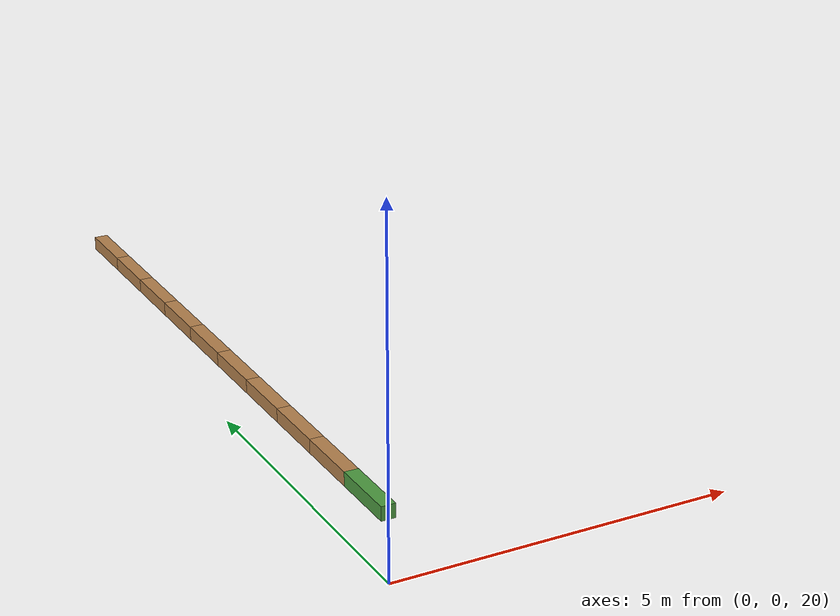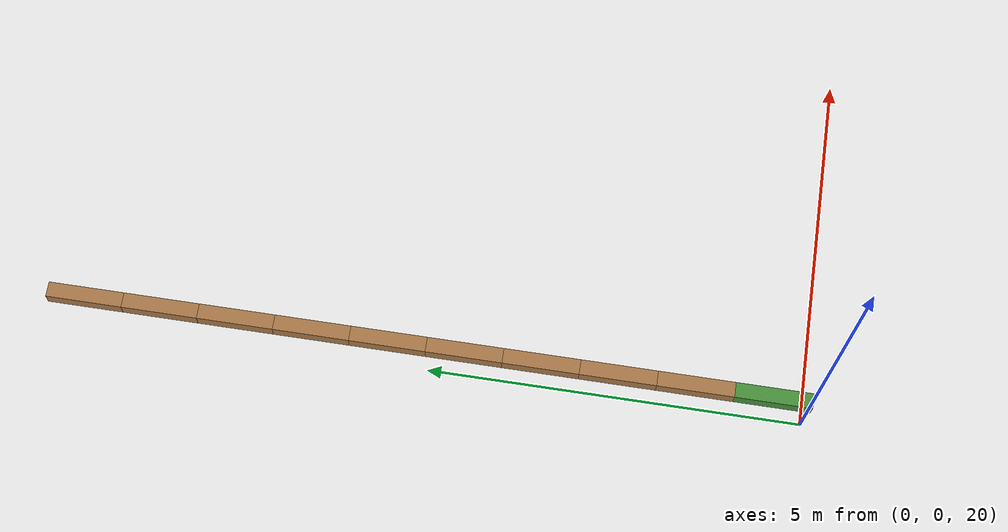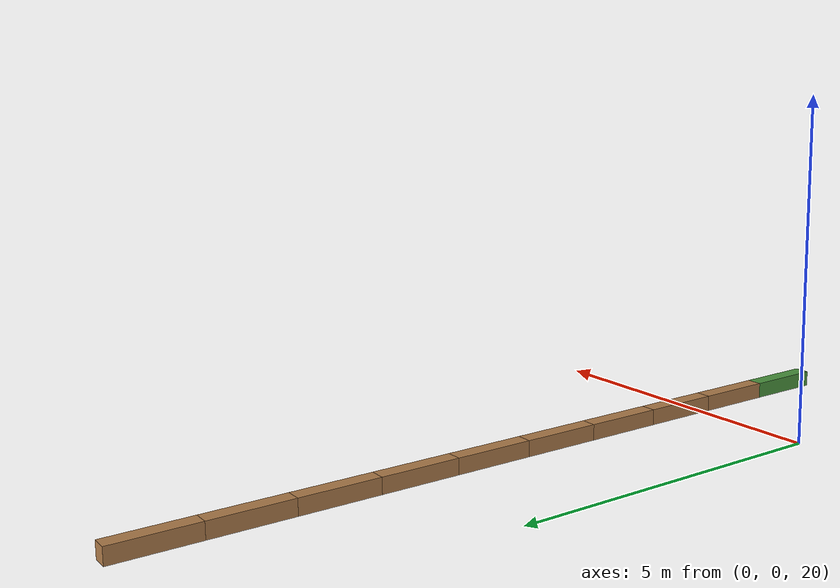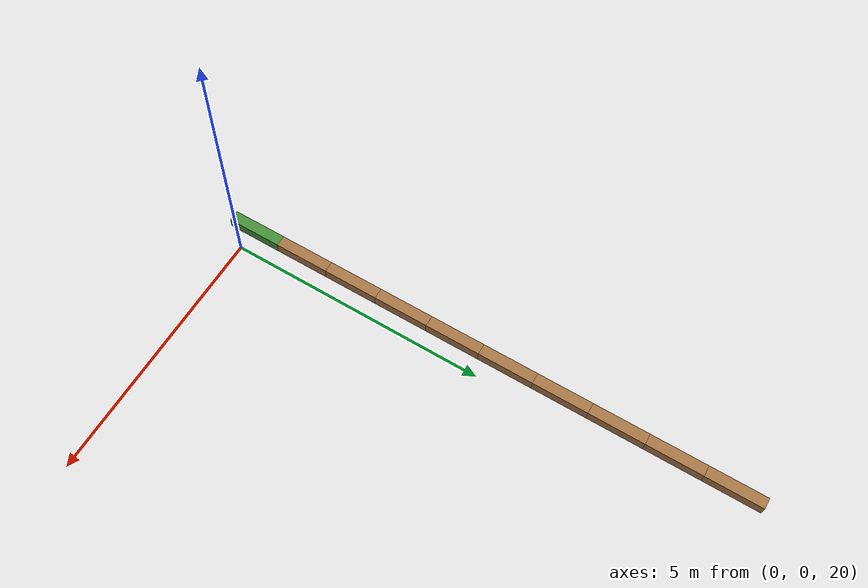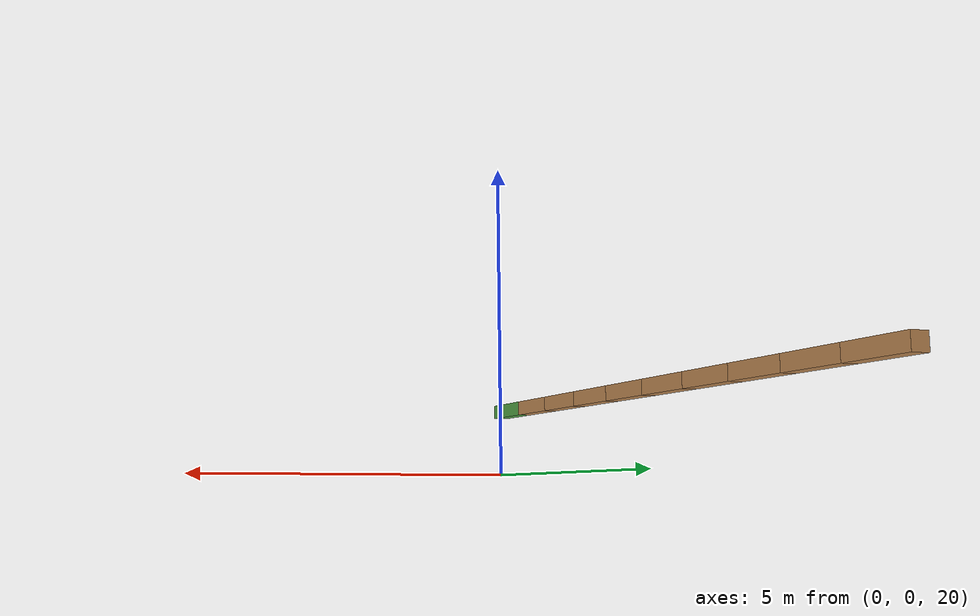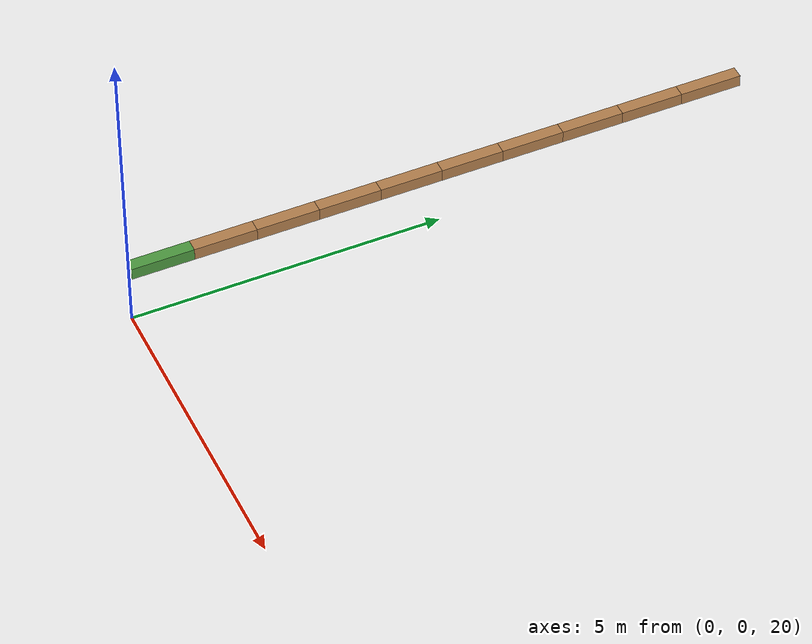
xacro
<?xml version="1.0"?>
<robot name="continuous_pendulum"
       xmlns:xi="http://www.w3.org/2001/XInclude"
       xmlns:gazebo="http://playerstage.sourceforge.net/gazebo/xmlschema/#gz"
       xmlns:model="http://playerstage.sourceforge.net/gazebo/xmlschema/#model"
       xmlns:sensor="http://playerstage.sourceforge.net/gazebo/xmlschema/#sensor"
       xmlns:body="http://playerstage.sourceforge.net/gazebo/xmlschema/#body"
       xmlns:geom="http://playerstage.sourceforge.net/gazebo/xmlschema/#geom"
       xmlns:joint="http://playerstage.sourceforge.net/gazebo/xmlschema/#joint"
       xmlns:interface="http://playerstage.sourceforge.net/gazebo/xmlschema/#interface"
       xmlns:rendering="http://playerstage.sourceforge.net/gazebo/xmlschema/#rendering"
       xmlns:renderable="http://playerstage.sourceforge.net/gazebo/xmlschema/#renderable"
       xmlns:controller="http://playerstage.sourceforge.net/gazebo/xmlschema/#controller"
       xmlns:xacro="http://ros.org/wiki/xacro"
       xmlns:physics="http://playerstage.sourceforge.net/gazebo/xmlschema/#physics">

  <!--
     A pendulum constructed from single continuous link and a mass with some moment of inertia
  -->
  <xacro:macro name="one_link" params="link_name parent *axis *origin material">
    <joint name="${link_name}_joint" type="continuous" >
      <insert_block name="origin"/>
      <insert_block name="axis"/>
      <parent link="${parent}" />
      <child link="${link_name}" />
      <dynamics damping="0.0" />
    </joint>
    <link name="${link_name}">
      <inertial >
        <mass value="1.0" />
        <origin xyz="0 1 0" />
        <inertia  ixx="0.0" ixy="0.0"  ixz="0.0"  iyy="0.0"  iyz="0.0"  izz="0.0" />
      </inertial>
      <visual >
        <origin xyz="0 0.5 0" rpy="0 0 0" />
        <geometry>
          <box size="0.2 1.0 0.2" />
        </geometry>
      </visual>
      <collision >
        <origin xyz="0 0.5 0" rpy="0 0 0" />
        <geometry>
          <box size="0.2 1.0 0.2" />
        </geometry>
      </collision>
    </link>
    <gazebo reference="${link_name}">
      <material>${material}</material>
      <turnGravityOff>false</turnGravityOff>
      <transmission type="SimpleTransmission" name="${link_name}_trans">
        <actuator name="${link_name}_motor" />
        <joint name="${link_name}_joint" />
        <mechanicalReduction>1</mechanicalReduction>
        <motorTorqueConstant>1</motorTorqueConstant>
      </transmission>
    </gazebo>
  </xacro:macro>

  <link name="world"/>
  <xacro:one_link link_name="link1" parent="world" material="Gazebo/GrassFloor">
    <origin xyz="0 0 21" rpy="0 0 0"/>
    <axis xyz="1 0 0" />
  </xacro:one_link>
  <xacro:one_link link_name="link2" parent="link1" material="Gazebo/LightWood">
    <origin xyz="0 1 0" rpy="0 0 0"/>
    <axis xyz="1 0 0" />
  </xacro:one_link>
  <xacro:one_link link_name="link3" parent="link2" material="Gazebo/LightWood">
    <origin xyz="0 1 0" rpy="0 0 0"/>
    <axis xyz="1 0 0" />
  </xacro:one_link>
  <xacro:one_link link_name="link4" parent="link3" material="Gazebo/LightWood">
    <origin xyz="0 1 0" rpy="0 0 0"/>
    <axis xyz="1 0 0" />
  </xacro:one_link>
  <xacro:one_link link_name="link5" parent="link4" material="Gazebo/LightWood">
    <origin xyz="0 1 0" rpy="0 0 0"/>
    <axis xyz="1 0 0" />
  </xacro:one_link>
  <xacro:one_link link_name="link6" parent="link5" material="Gazebo/LightWood">
    <origin xyz="0 1 0" rpy="0 0 0"/>
    <axis xyz="1 0 0" />
  </xacro:one_link>
  <xacro:one_link link_name="link7" parent="link6" material="Gazebo/LightWood">
    <origin xyz="0 1 0" rpy="0 0 0"/>
    <axis xyz="1 0 0" />
  </xacro:one_link>
  <xacro:one_link link_name="link8" parent="link7" material="Gazebo/LightWood">
    <origin xyz="0 1 0" rpy="0 0 0"/>
    <axis xyz="1 0 0" />
  </xacro:one_link>
  <xacro:one_link link_name="link9" parent="link8" material="Gazebo/LightWood">
    <origin xyz="0 1 0" rpy="0 0 0"/>
    <axis xyz="1 0 0" />
  </xacro:one_link>
  <xacro:one_link link_name="link10" parent="link9" material="Gazebo/LightWood">
    <origin xyz="0 1 0" rpy="0 0 0"/>
    <axis xyz="1 0 0" />
  </xacro:one_link>

  <gazebo>
      <!-- PR2_ACTARRAY -->
      <controller:gazebo_ros_controller_manager name="gazebo_ros_controller_manager" plugin="libgazebo_ros_controller_manager.so">
        <alwaysOn>true</alwaysOn>
        <updateRate>1000.0</updateRate>
        <interface:audio name="gazebo_ros_controller_manager_dummy_iface" />
      </controller:gazebo_ros_controller_manager>

      <!-- gazebo_ros_p3d for position groundtruth -->
      <controller:gazebo_ros_p3d name="p3d_link1_controller" plugin="libgazebo_ros_p3d.so">
          <alwaysOn>true</alwaysOn>
          <updateRate>100.0</updateRate>
          <bodyName>link1</bodyName>
          <topicName>link1_pose</topicName>
          <frameName>map</frameName>
          <interface:position name="p3d_link1_position"/>
      </controller:gazebo_ros_p3d>
      <controller:gazebo_ros_p3d name="p3d_link2_controller" plugin="libgazebo_ros_p3d.so">
          <alwaysOn>true</alwaysOn>
          <updateRate>100.0</updateRate>
          <bodyName>link2</bodyName>
          <topicName>link2_pose</topicName>
          <frameName>map</frameName>
          <interface:position name="p3d_link2_position"/>
      </controller:gazebo_ros_p3d>
  </gazebo>

</robot>
